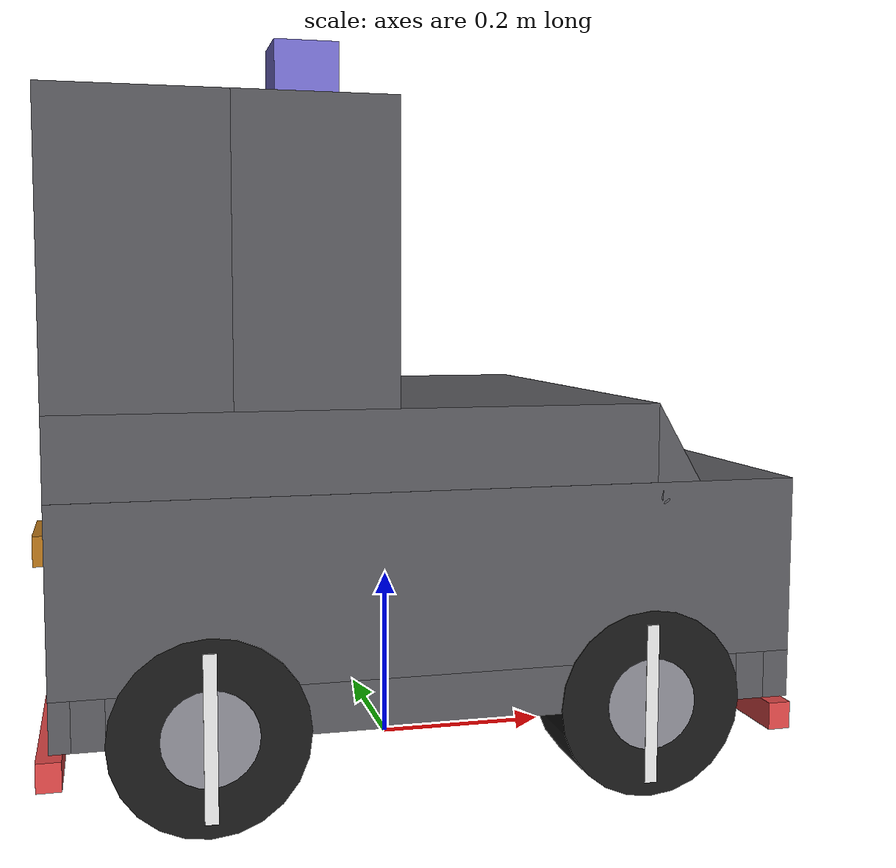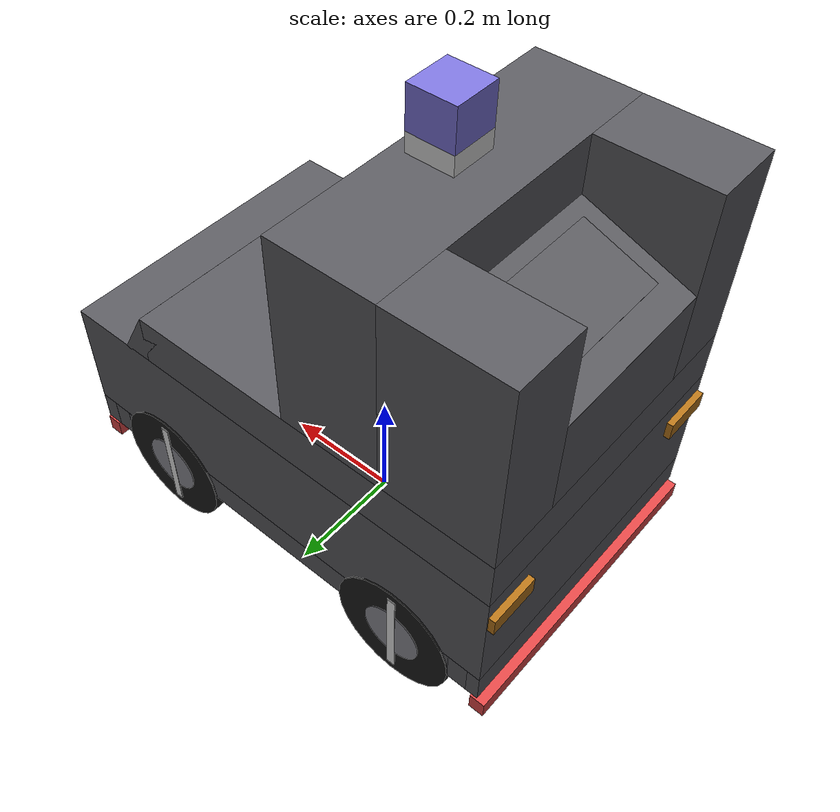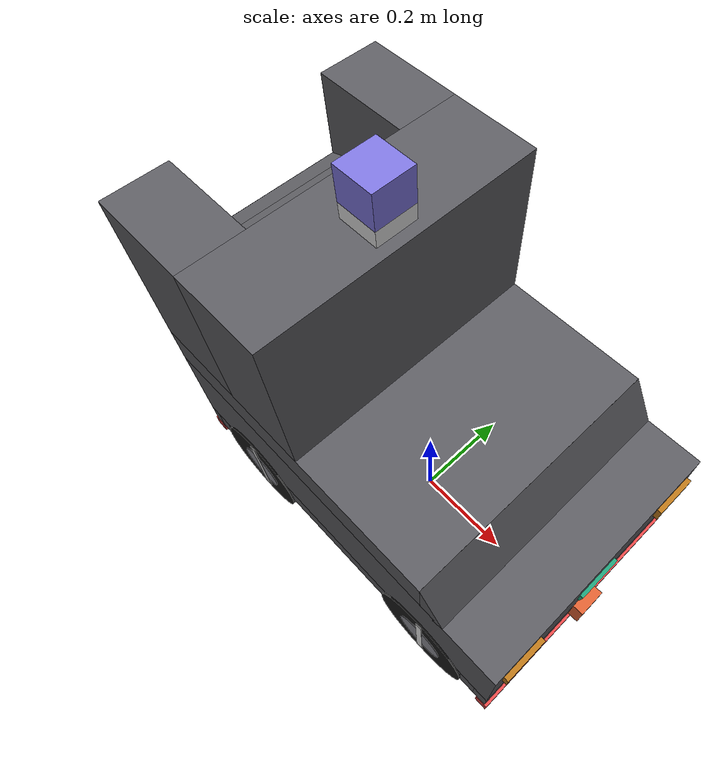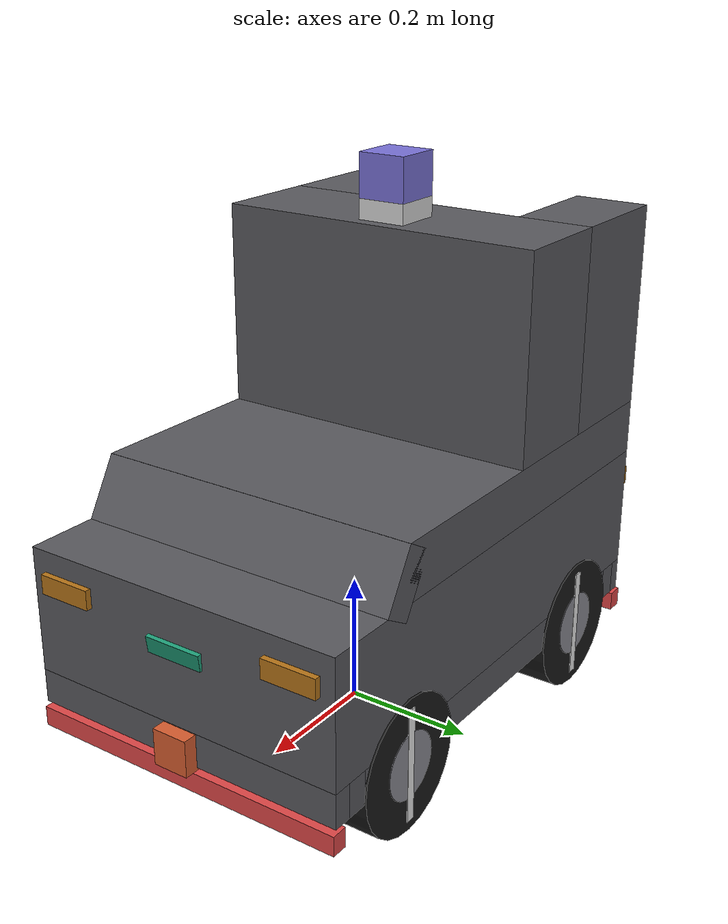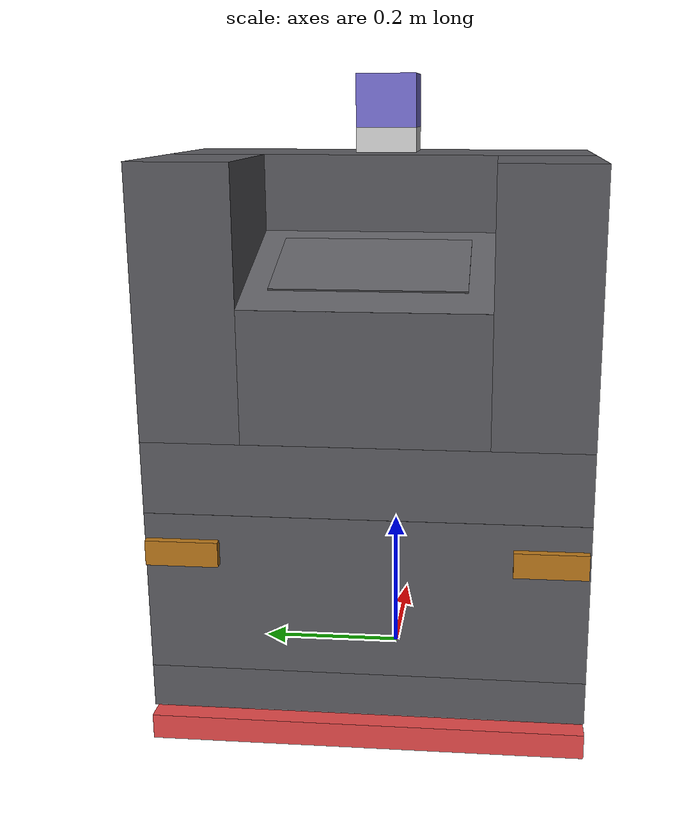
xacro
<?xml version="1.0"?>
<!--
  Dry-run entry point: the unmodified robot description plus ros2_control on mock hardware.
  Used by controllers.launch.py hardware:=mock and the mock kinematics test.
-->
<robot name="mecanum" xmlns:xacro="http://www.ros.org/wiki/xacro">

  <xacro:include filename="$(find mecanum_description)/urdf/mecanum.urdf.xacro"/>
  <xacro:include filename="$(find mecanum_controllers)/urdf/mecanum.ros2_control.xacro"/>

  <xacro:mecanum_ros2_control prefix="$(arg prefix)" hardware="mock"/>

</robot>

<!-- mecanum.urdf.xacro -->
<!-- Main entry point for the mecanum robot description (the washroom robot prototype). -->
<robot name="mecanum" xmlns:xacro="http://www.ros.org/wiki/xacro">

  <!-- Optional prefix for all links/joints (e.g. "robot1_") -->
  <xacro:arg name="prefix" default=""/>

  <xacro:include filename="$(find mecanum_description)/urdf/mecanum_params.xacro"/>
  <xacro:include filename="$(find mecanum_description)/urdf/materials.xacro"/>
  <xacro:include filename="$(find mecanum_description)/urdf/inertial_macros.xacro"/>
  <xacro:include filename="$(find mecanum_description)/urdf/mecanum_wheel.xacro"/>
  <xacro:include filename="$(find mecanum_description)/urdf/mecanum_robot.xacro"/>

  <xacro:mecanum_robot prefix="$(arg prefix)"/>

  <!-- Unitree L2 LiDAR (mount, lidar and IMU frames) -->
  <xacro:arg name="use_l2" default="true"/>
  <xacro:if value="$(arg use_l2)">
    <xacro:include filename="$(find mecanum_description)/urdf/sensors/unitree_l2.xacro"/>
  </xacro:if>

  <!-- RealSense D435i depth camera (body and optical frames) -->
  <xacro:arg name="use_d435i" default="true"/>
  <xacro:if value="$(arg use_d435i)">
    <xacro:include filename="$(find mecanum_description)/urdf/sensors/realsense_d435i.xacro"/>
  </xacro:if>

  <!-- RPLIDAR C1 2D lidar (scan frame) -->
  <xacro:arg name="use_lidar_2d" default="true"/>
  <xacro:if value="$(arg use_lidar_2d)">
    <xacro:include filename="$(find mecanum_description)/urdf/sensors/lidar_2d.xacro"/>
  </xacro:if>

  <!-- Four ultrasonic rangers (beam frames) -->
  <xacro:arg name="use_ultrasonics" default="true"/>
  <xacro:if value="$(arg use_ultrasonics)">
    <xacro:include filename="$(find mecanum_description)/urdf/sensors/ultrasonics.xacro"/>
  </xacro:if>

  <!-- Four downward cliff ToF sensors (beam frames) -->
  <xacro:arg name="use_cliff_tof" default="true"/>
  <xacro:if value="$(arg use_cliff_tof)">
    <xacro:include filename="$(find mecanum_description)/urdf/sensors/cliff_tof.xacro"/>
  </xacro:if>

  <!-- Front and rear bumper planks -->
  <xacro:arg name="use_bumpers" default="true"/>
  <xacro:if value="$(arg use_bumpers)">
    <xacro:include filename="$(find mecanum_description)/urdf/sensors/bumpers.xacro"/>
  </xacro:if>

  <!-- Not modelled: the E-stop (rear face of the tall box), the arm (not in the CAD yet) and
       the internal electronics. -->

</robot>

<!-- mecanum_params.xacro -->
<robot xmlns:xacro="http://www.ros.org/wiki/xacro">

  <!-- ===== Wheels (STEP bodies 'Folder 28*') ===== -->
  <!-- STAND-IN: unloaded CAD radius; measure the loaded radius on the robot -->
  <xacro:property name="wheel_radius" value="0.1025"/>
  <xacro:property name="wheel_width" value="0.085"/>
  <xacro:property name="wheel_hub_radius" value="0.05"/>
  <!-- STAND-IN: no masses were supplied; 1.5 kg assumed per wheel (the drive motors are
       counted in chassis_mass). Weigh one wheel with its hub. -->
  <xacro:property name="wheel_mass" value="1.5"/>
  <!-- Inertia of the STEP wheel solid scaled to wheel_mass (about the wheel centre) -->
  <xacro:property name="wheel_ixx" value="0.00582886"/>
  <xacro:property name="wheel_iyy" value="0.0100038"/>
  <!-- Wheel centre of mass offset along the axle, toward the robot centreline -->
  <xacro:property name="wheel_com_y" value="0.0003"/>

  <xacro:property name="front_axle_x" value="0.2363"/>
  <xacro:property name="rear_axle_x" value="-0.2357"/>
  <xacro:property name="wheel_y" value="0.2150"/>

  <!-- ===== Body (STEP body 'Cover', rebuilt from boxes in mecanum_robot.xacro) ===== -->
  <!-- Envelope relative to base_link: x -0.391..0.399, y -0.255..0.255,
       z -0.0037..0.6344 (0.099..0.737 m above the floor). -->
  <xacro:property name="chassis_mass" value="25.0"/>
  <xacro:property name="chassis_com_x" value="-0.065"/>
  <xacro:property name="chassis_com_z" value="0.2426"/>
  <xacro:property name="chassis_ixx" value="1.25341"/>
  <xacro:property name="chassis_iyy" value="1.83996"/>
  <xacro:property name="chassis_izz" value="1.69493"/>
  <xacro:property name="chassis_ixz" value="0.331293"/>

</robot>

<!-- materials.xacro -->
<!-- RViz colours. The sensor colours match the callouts in
     docs/Washroom_Robot_Prototype_Sensors_and_BOM.pdf. -->
<robot xmlns:xacro="http://www.ros.org/wiki/xacro">

  <material name="cad_grey">
    <color rgba="0.352 0.352 0.371 1"/>
  </material>

  <material name="tyre_black">
    <color rgba="0.1 0.1 0.1 1"/>
  </material>

  <material name="hub_grey">
    <color rgba="0.55 0.55 0.58 1"/>
  </material>

  <material name="marker_white">
    <color rgba="0.92 0.92 0.92 1"/>
  </material>

  <material name="l2_purple">
    <color rgba="0.48 0.45 0.85 1"/>
  </material>

  <material name="mount_white">
    <color rgba="0.85 0.85 0.85 1"/>
  </material>

  <material name="d435i_green">
    <color rgba="0.12 0.62 0.47 1"/>
  </material>

  <material name="lidar_orange">
    <color rgba="0.85 0.37 0.19 1"/>
  </material>

  <material name="ultrasonic_ochre">
    <color rgba="0.72 0.46 0.1 1"/>
  </material>

  <material name="tof_blue">
    <color rgba="0.23 0.53 0.84 1"/>
  </material>

  <material name="bumper_red">
    <color rgba="0.88 0.28 0.28 1"/>
  </material>

</robot>

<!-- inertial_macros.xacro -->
<!-- Inertia macros for solid primitives (about the centre of mass). -->
<robot xmlns:xacro="http://www.ros.org/wiki/xacro">

  <!-- Solid box with dimensions x, y, z -->
  <xacro:macro name="box_inertia" params="mass x y z *origin">
    <inertial>
      <xacro:insert_block name="origin"/>
      <mass value="${mass}"/>
      <inertia ixx="${mass * (y*y + z*z) / 12.0}" ixy="0.0" ixz="0.0"
               iyy="${mass * (x*x + z*z) / 12.0}" iyz="0.0"
               izz="${mass * (x*x + y*y) / 12.0}"/>
    </inertial>
  </xacro:macro>

  <!-- Solid cylinder with its axis along the local z axis -->
  <xacro:macro name="cylinder_inertia" params="mass radius length *origin">
    <inertial>
      <xacro:insert_block name="origin"/>
      <mass value="${mass}"/>
      <inertia ixx="${mass * (3*radius*radius + length*length) / 12.0}" ixy="0.0" ixz="0.0"
               iyy="${mass * (3*radius*radius + length*length) / 12.0}" iyz="0.0"
               izz="${mass * radius*radius / 2.0}"/>
    </inertial>
  </xacro:macro>

</robot>

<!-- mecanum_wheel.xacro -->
<!-- A single mecanum wheel: link and continuous joint. -->
<robot xmlns:xacro="http://www.ros.org/wiki/xacro">

  <xacro:macro name="mecanum_wheel" params="prefix name parent x y side">

    <link name="${prefix}${name}_wheel_link">
      <inertial>
        <origin xyz="0 ${-side * wheel_com_y} 0" rpy="0 0 0"/>
        <mass value="${wheel_mass}"/>
        <inertia ixx="${wheel_ixx}" ixy="0" ixz="0" iyy="${wheel_iyy}" iyz="0"
                 izz="${wheel_ixx}"/>
      </inertial>
      <!-- Tyre -->
      <visual>
        <origin xyz="0 0 0" rpy="${pi/2} 0 0"/>
        <geometry>
          <cylinder radius="${wheel_radius}" length="${wheel_width}"/>
        </geometry>
        <material name="tyre_black"/>
      </visual>
      <!-- Hub -->
      <visual>
        <origin xyz="0 0 0" rpy="${pi/2} 0 0"/>
        <geometry>
          <cylinder radius="${wheel_hub_radius}" length="${wheel_width + 0.002}"/>
        </geometry>
        <material name="hub_grey"/>
      </visual>
      <!-- White bar across the wheel face: shows the wheel turning in RViz -->
      <visual>
        <origin xyz="0 0 0" rpy="0 0 0"/>
        <geometry>
          <box size="0.014 ${wheel_width + 0.003} ${0.85 * 2 * wheel_radius}"/>
        </geometry>
        <material name="marker_white"/>
      </visual>
      <collision>
        <origin xyz="0 0 0" rpy="${pi/2} 0 0"/>
        <geometry>
          <cylinder radius="${wheel_radius}" length="${wheel_width}"/>
        </geometry>
      </collision>
    </link>

    <joint name="${prefix}${name}_wheel_joint" type="continuous">
      <parent link="${prefix}${parent}"/>
      <child link="${prefix}${name}_wheel_link"/>
      <origin xyz="${x} ${y} 0" rpy="0 0 0"/>
      <axis xyz="0 1 0"/>
    </joint>

  </xacro:macro>

</robot>

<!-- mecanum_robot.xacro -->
<!-- Robot body: base_footprint, base_link, chassis_link and the four wheels. -->
<robot xmlns:xacro="http://www.ros.org/wiki/xacro">

  <!-- One box of the body envelope, used for both visual and collision -->
  <xacro:macro name="chassis_box" params="xyz rpy:='0 0 0' size">
    <visual>
      <origin xyz="${xyz}" rpy="${rpy}"/>
      <geometry>
        <box size="${size}"/>
      </geometry>
      <material name="cad_grey"/>
    </visual>
    <collision>
      <origin xyz="${xyz}" rpy="${rpy}"/>
      <geometry>
        <box size="${size}"/>
      </geometry>
    </collision>
  </xacro:macro>

  <xacro:macro name="mecanum_robot" params="prefix">

    <!-- Ground-projected robot frame (REP-105), below the wheel-rectangle centre -->
    <link name="${prefix}base_footprint" />

    <joint name="${prefix}base_joint" type="fixed">
      <parent link="${prefix}base_footprint" />
      <child link="${prefix}base_link" />
      <origin xyz="0 0 ${wheel_radius}" rpy="0 0 0" />
    </joint>

    <!-- base_link sits at wheel axle height. Frame only: the body mass is in chassis_link, so
         robot_state_publisher does not warn about an inertial root (Gazebo lumps the fixed
         joint). -->
    <link name="${prefix}base_link" />

    <link name="${prefix}chassis_link">
      <inertial>
        <origin xyz="${chassis_com_x} 0 ${chassis_com_z}" rpy="0 0 0"/>
        <mass value="${chassis_mass}"/>
        <inertia ixx="${chassis_ixx}" ixy="0" ixz="${chassis_ixz}" iyy="${chassis_iyy}"
                 iyz="0" izz="${chassis_izz}"/>
      </inertial>
      <!-- Underside slab, 9 parts around the four cliff-sensor pockets -->
      <xacro:chassis_box xyz="-0.3805 0 0.0224" size="0.021 0.51 0.0521"/>
      <xacro:chassis_box xyz="-0.3535 -0.2449 0.0224" size="0.033 0.0202 0.0521"/>
      <xacro:chassis_box xyz="-0.3535 0 0.0224" size="0.033 0.3616 0.0521"/>
      <xacro:chassis_box xyz="-0.3535 0.2449 0.0224" size="0.033 0.0202 0.0521"/>
      <xacro:chassis_box xyz="0 0 0.0224" size="0.674 0.51 0.0521"/>
      <xacro:chassis_box xyz="0.3535 -0.2449 0.0224" size="0.033 0.0202 0.0521"/>
      <xacro:chassis_box xyz="0.3535 0 0.0224" size="0.033 0.3616 0.0521"/>
      <xacro:chassis_box xyz="0.3535 0.2449 0.0224" size="0.033 0.0202 0.0521"/>
      <xacro:chassis_box xyz="0.3845 0 0.0224" size="0.029 0.51 0.0521"/>
      <!-- Lower body (envelope of the open-bottom shell) -->
      <xacro:chassis_box xyz="0.004 0 0.1446" size="0.79 0.51 0.1923"/>
      <!-- Raised deck (the arm will stand here) -->
      <xacro:chassis_box xyz="-0.0755 0 0.2831" size="0.6309 0.51 0.0846"/>
      <!-- 60 deg slope from the deck down to the front step -->
      <xacro:chassis_box xyz="0.2438 0 0.2713" rpy="0 -0.523598775 0" size="0.0473 0.51 0.0977"/>
      <!-- Tall box: front part and the two rear ears around the rear notch -->
      <xacro:chassis_box xyz="-0.1255 0 0.4799" size="0.167 0.51 0.309"/>
      <xacro:chassis_box xyz="-0.3 0.1975 0.4799" size="0.182 0.115 0.309"/>
      <xacro:chassis_box xyz="-0.3 -0.1975 0.4799" size="0.182 0.115 0.309"/>
      <!-- Rear notch: below its floor, the 20 deg floor, and the 2 mm raised pad on it -->
      <xacro:chassis_box xyz="-0.3 0 0.4016" size="0.182 0.28 0.1523"/>
      <xacro:chassis_box xyz="-0.2885 0 0.4792" rpy="0 -0.349044398 0" size="0.1937 0.28 0.0672"/>
      <xacro:chassis_box xyz="-0.2902 0 0.5149" rpy="0 -0.34906585 0" size="0.125 0.223 0.003"/>
    </link>

    <joint name="${prefix}chassis_joint" type="fixed">
      <parent link="${prefix}base_link" />
      <child link="${prefix}chassis_link" />
      <origin xyz="0 0 0" rpy="0 0 0" />
    </joint>

    <xacro:mecanum_wheel prefix="${prefix}" name="front_left" parent="base_link"
      x="${front_axle_x}" y="${wheel_y}" side="1" />
    <xacro:mecanum_wheel prefix="${prefix}" name="front_right" parent="base_link"
      x="${front_axle_x}" y="${-wheel_y}" side="-1" />
    <xacro:mecanum_wheel prefix="${prefix}" name="rear_left" parent="base_link"
      x="${rear_axle_x}" y="${wheel_y}" side="1" />
    <xacro:mecanum_wheel prefix="${prefix}" name="rear_right" parent="base_link"
      x="${rear_axle_x}" y="${-wheel_y}" side="-1" />

  </xacro:macro>

</robot>

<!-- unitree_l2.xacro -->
<robot xmlns:xacro="http://www.ros.org/wiki/xacro">

  <!-- Vendor datasheet values (not stand-ins) -->
  <xacro:property name="l2_body_size" value="0.075"/>
  <xacro:property name="l2_body_height" value="0.065"/>
  <xacro:property name="l2_mass" value="0.230"/>
  <!-- IMU origin in the lidar frame, from the unilidar_sdk2 README -->
  <xacro:property name="l2_imu_x" value="-0.007698"/>
  <xacro:property name="l2_imu_y" value="-0.014655"/>
  <xacro:property name="l2_imu_z" value="0.00667"/>

  <xacro:property name="l2_mount_x" value="-0.100"/>
  <xacro:property name="l2_mount_y" value="0.0"/>
  <xacro:property name="l2_mount_z" value="${0.7369 + 0.030 - wheel_radius}"/>
  <xacro:property name="l2_standoff_height" value="0.030"/>
  <xacro:property name="l2_cable_yaw" value="0.0"/>

  <xacro:macro name="unitree_l2" params="prefix parent">

    <joint name="${prefix}l2_mount_joint" type="fixed">
      <parent link="${prefix}${parent}"/>
      <child link="${prefix}l2_mount"/>
      <origin xyz="${l2_mount_x} ${l2_mount_y} ${l2_mount_z}" rpy="0 0 0"/>
    </joint>

    <!-- L2 body above the mounting face and the standoff below it. Mass: the L2 only (the
         standoff is counted in chassis_mass). -->
    <link name="${prefix}l2_mount">
      <xacro:box_inertia mass="${l2_mass}" x="${l2_body_size}" y="${l2_body_size}"
        z="${l2_body_height}">
        <origin xyz="0 0 ${l2_body_height/2}" rpy="0 0 0"/>
      </xacro:box_inertia>
      <visual>
        <origin xyz="0 0 ${l2_body_height/2}" rpy="0 0 0"/>
        <geometry>
          <box size="${l2_body_size} ${l2_body_size} ${l2_body_height}"/>
        </geometry>
        <material name="l2_purple"/>
      </visual>
      <visual>
        <origin xyz="0 0 ${-l2_standoff_height/2}" rpy="0 0 0"/>
        <geometry>
          <box size="${l2_body_size} ${l2_body_size} ${l2_standoff_height}"/>
        </geometry>
        <material name="mount_white"/>
      </visual>
      <collision>
        <origin xyz="0 0 ${(l2_body_height - l2_standoff_height)/2}" rpy="0 0 0"/>
        <geometry>
          <box size="${l2_body_size} ${l2_body_size} ${l2_body_height + l2_standoff_height}"/>
        </geometry>
      </collision>
    </link>

    <!-- Point cloud frame (vendor lidar frame) -->
    <joint name="${prefix}l2_lidar_joint" type="fixed">
      <parent link="${prefix}l2_mount"/>
      <child link="${prefix}l2_lidar"/>
      <origin xyz="0 0 0" rpy="0 0 ${l2_cable_yaw}"/>
    </joint>
    <link name="${prefix}l2_lidar"/>

    <!-- Built-in 6-axis IMU frame: vendor offset in the lidar frame -->
    <joint name="${prefix}l2_imu_joint" type="fixed">
      <parent link="${prefix}l2_lidar"/>
      <child link="${prefix}l2_imu"/>
      <origin xyz="${l2_imu_x} ${l2_imu_y} ${l2_imu_z}" rpy="0 0 0"/>
    </joint>
    <link name="${prefix}l2_imu"/>

  </xacro:macro>

  <xacro:unitree_l2 prefix="$(arg prefix)" parent="base_link"/>

</robot>

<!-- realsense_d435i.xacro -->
<robot xmlns:xacro="http://www.ros.org/wiki/xacro">

  <xacro:property name="d435i_body_x" value="0.025"/>
  <xacro:property name="d435i_body_y" value="0.09"/>
  <xacro:property name="d435i_body_z" value="0.025"/>
  <!-- Pose in base_link: front face of the STEP body (0.264 m above the floor) -->
  <xacro:property name="d435i_x" value="0.404"/>
  <xacro:property name="d435i_z" value="0.1614"/>
  <!-- STAND-IN: PDF "pitched -8 deg" (optical axis 8 deg below horizontal); positive pitch
       about +y tips +x down. Measure on the robot. -->
  <xacro:property name="d435i_pitch" value="${radians(8.0)}"/>

  <xacro:macro name="realsense_d435i" params="prefix parent">

    <joint name="${prefix}d435i_joint" type="fixed">
      <parent link="${prefix}${parent}"/>
      <child link="${prefix}d435i_link"/>
      <origin xyz="${d435i_x} 0 ${d435i_z}" rpy="0 ${d435i_pitch} 0"/>
    </joint>

    <!-- Massless: the camera's mass is counted in chassis_mass -->
    <link name="${prefix}d435i_link">
      <visual>
        <origin xyz="${-d435i_body_x/2} 0 0" rpy="0 0 0"/>
        <geometry>
          <box size="${d435i_body_x} ${d435i_body_y} ${d435i_body_z}"/>
        </geometry>
        <material name="d435i_green"/>
      </visual>
      <collision>
        <origin xyz="${-d435i_body_x/2} 0 0" rpy="0 0 0"/>
        <geometry>
          <box size="${d435i_body_x} ${d435i_body_y} ${d435i_body_z}"/>
        </geometry>
      </collision>
    </link>

    <joint name="${prefix}d435i_optical_joint" type="fixed">
      <parent link="${prefix}d435i_link"/>
      <child link="${prefix}d435i_optical_frame"/>
      <origin xyz="0 0 0" rpy="${-pi/2} 0 ${-pi/2}"/>
    </joint>
    <link name="${prefix}d435i_optical_frame"/>

  </xacro:macro>

  <xacro:realsense_d435i prefix="$(arg prefix)" parent="base_link"/>

</robot>

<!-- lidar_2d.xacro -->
<robot xmlns:xacro="http://www.ros.org/wiki/xacro">

  <xacro:property name="lidar_2d_body_x" value="0.0413"/>
  <xacro:property name="lidar_2d_body_y" value="0.0556"/>
  <xacro:property name="lidar_2d_body_z" value="0.0556"/>
  <!-- Pose in base_link -->
  <xacro:property name="lidar_2d_x" value="0.3997"/>
  <!-- STAND-IN: PDF scan plane 0.13 m above the floor; measure the C1's optical centre height,
       and check its 0 deg direction on the unit. -->
  <xacro:property name="lidar_2d_z" value="0.0275"/>
  <!-- Body centre below the scan plane -->
  <xacro:property name="lidar_2d_body_offset_z" value="-0.0078"/>

  <xacro:macro name="lidar_2d" params="prefix parent">

    <joint name="${prefix}lidar_2d_joint" type="fixed">
      <parent link="${prefix}${parent}"/>
      <child link="${prefix}lidar_2d_link"/>
      <origin xyz="${lidar_2d_x} 0 ${lidar_2d_z}" rpy="0 0 0"/>
    </joint>

    <!-- Massless: the lidar's mass is counted in chassis_mass -->
    <link name="${prefix}lidar_2d_link">
      <visual>
        <origin xyz="0 0 ${lidar_2d_body_offset_z}" rpy="0 0 0"/>
        <geometry>
          <box size="${lidar_2d_body_x} ${lidar_2d_body_y} ${lidar_2d_body_z}"/>
        </geometry>
        <material name="lidar_orange"/>
      </visual>
      <collision>
        <origin xyz="0 0 ${lidar_2d_body_offset_z}" rpy="0 0 0"/>
        <geometry>
          <box size="${lidar_2d_body_x} ${lidar_2d_body_y} ${lidar_2d_body_z}"/>
        </geometry>
      </collision>
    </link>

  </xacro:macro>

  <xacro:lidar_2d prefix="$(arg prefix)" parent="base_link"/>

</robot>

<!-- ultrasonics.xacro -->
<robot xmlns:xacro="http://www.ros.org/wiki/xacro">

  <xacro:property name="ultrasonic_body_x" value="0.029"/>
  <xacro:property name="ultrasonic_body_y" value="0.0846"/>
  <xacro:property name="ultrasonic_body_z" value="0.0296"/>

  <!-- pos: front_left, ...; x, y, z: outward-face centre in the parent frame; yaw: beam
       direction (0 front, pi rear) -->
  <xacro:macro name="ultrasonic" params="prefix parent pos x y z yaw">

    <joint name="${prefix}ultrasonic_${pos}_joint" type="fixed">
      <parent link="${prefix}${parent}"/>
      <child link="${prefix}ultrasonic_${pos}_link"/>
      <origin xyz="${x} ${y} ${z}" rpy="0 0 ${yaw}"/>
    </joint>

    <!-- Massless: counted in chassis_mass -->
    <link name="${prefix}ultrasonic_${pos}_link">
      <visual>
        <origin xyz="${-ultrasonic_body_x/2} 0 0" rpy="0 0 0"/>
        <geometry>
          <box size="${ultrasonic_body_x} ${ultrasonic_body_y} ${ultrasonic_body_z}"/>
        </geometry>
        <material name="ultrasonic_ochre"/>
      </visual>
      <collision>
        <origin xyz="${-ultrasonic_body_x/2} 0 0" rpy="0 0 0"/>
        <geometry>
          <box size="${ultrasonic_body_x} ${ultrasonic_body_y} ${ultrasonic_body_z}"/>
        </geometry>
      </collision>
    </link>

  </xacro:macro>

  <!-- Poses in base_link (front pair 0.296 m, rear pair 0.298 m above the floor) -->
  <xacro:ultrasonic prefix="$(arg prefix)" parent="base_link" pos="front_left"
    x="0.408" y="0.1905" z="0.1937" yaw="0"/>
  <xacro:ultrasonic prefix="$(arg prefix)" parent="base_link" pos="front_right"
    x="0.408" y="-0.1905" z="0.1937" yaw="0"/>
  <xacro:ultrasonic prefix="$(arg prefix)" parent="base_link" pos="rear_left"
    x="-0.401" y="0.2105" z="0.1957" yaw="${pi}"/>
  <xacro:ultrasonic prefix="$(arg prefix)" parent="base_link" pos="rear_right"
    x="-0.401" y="-0.2105" z="0.1957" yaw="${pi}"/>

</robot>

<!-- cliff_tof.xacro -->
<robot xmlns:xacro="http://www.ros.org/wiki/xacro">

  <xacro:property name="cliff_tof_body_x" value="0.0296"/>
  <xacro:property name="cliff_tof_body_y" value="0.05"/>
  <xacro:property name="cliff_tof_body_z" value="0.029"/>
  <xacro:property name="cliff_tof_x" value="0.3535"/>
  <xacro:property name="cliff_tof_y" value="0.2078"/>
  <!-- STAND-IN: STEP height 0.119 m above the floor; the PDF says 0.08 m. Measure the sensor
       face height on the robot; the cliff threshold depends on it. -->
  <xacro:property name="cliff_tof_z" value="0.0169"/>

  <xacro:macro name="cliff_tof" params="prefix parent pos x y z">

    <joint name="${prefix}cliff_tof_${pos}_joint" type="fixed">
      <parent link="${prefix}${parent}"/>
      <child link="${prefix}cliff_tof_${pos}_link"/>
      <origin xyz="${x} ${y} ${z}" rpy="0 ${pi/2} 0"/>
    </joint>

    <!-- Massless: counted in chassis_mass -->
    <link name="${prefix}cliff_tof_${pos}_link">
      <visual>
        <origin xyz="${-cliff_tof_body_x/2} 0 0" rpy="0 0 0"/>
        <geometry>
          <box size="${cliff_tof_body_x} ${cliff_tof_body_y} ${cliff_tof_body_z}"/>
        </geometry>
        <material name="tof_blue"/>
      </visual>
      <collision>
        <origin xyz="${-cliff_tof_body_x/2} 0 0" rpy="0 0 0"/>
        <geometry>
          <box size="${cliff_tof_body_x} ${cliff_tof_body_y} ${cliff_tof_body_z}"/>
        </geometry>
      </collision>
    </link>

  </xacro:macro>

  <xacro:cliff_tof prefix="$(arg prefix)" parent="base_link" pos="front_left"
    x="${cliff_tof_x}" y="${cliff_tof_y}" z="${cliff_tof_z}"/>
  <xacro:cliff_tof prefix="$(arg prefix)" parent="base_link" pos="front_right"
    x="${cliff_tof_x}" y="${-cliff_tof_y}" z="${cliff_tof_z}"/>
  <xacro:cliff_tof prefix="$(arg prefix)" parent="base_link" pos="rear_left"
    x="${-cliff_tof_x}" y="${cliff_tof_y}" z="${cliff_tof_z}"/>
  <xacro:cliff_tof prefix="$(arg prefix)" parent="base_link" pos="rear_right"
    x="${-cliff_tof_x}" y="${-cliff_tof_y}" z="${cliff_tof_z}"/>

</robot>

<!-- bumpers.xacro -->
<robot xmlns:xacro="http://www.ros.org/wiki/xacro">

  <xacro:property name="bumper_depth" value="0.025"/>
  <xacro:property name="bumper_width" value="0.51"/>
  <xacro:property name="bumper_height" value="0.03"/>
  <!-- STAND-IN: STEP plank position; the PDF wants the planks 3 cm proud of the faces -->
  <xacro:property name="bumper_x" value="0.3915"/>
  <!-- Plank centre 0.076 m above the floor -->
  <xacro:property name="bumper_z" value="-0.0261"/>
  <!-- STAND-IN: plank and return springs, taken out of chassis_mass so the total stays the same.
       Weigh a plank. -->
  <xacro:property name="bumper_mass" value="0.1"/>

  <xacro:macro name="bumper" params="prefix parent pos x z yaw">

    <joint name="${prefix}bumper_${pos}_joint" type="fixed">
      <parent link="${prefix}${parent}"/>
      <child link="${prefix}bumper_${pos}_link"/>
      <origin xyz="${x} 0 ${z}" rpy="0 0 ${yaw}"/>
    </joint>

    <link name="${prefix}bumper_${pos}_link">
      <xacro:box_inertia mass="${bumper_mass}" x="${bumper_depth}" y="${bumper_width}"
        z="${bumper_height}">
        <origin xyz="0 0 0" rpy="0 0 0"/>
      </xacro:box_inertia>
      <visual>
        <origin xyz="0 0 0" rpy="0 0 0"/>
        <geometry>
          <box size="${bumper_depth} ${bumper_width} ${bumper_height}"/>
        </geometry>
        <material name="bumper_red"/>
      </visual>
      <collision>
        <origin xyz="0 0 0" rpy="0 0 0"/>
        <geometry>
          <box size="${bumper_depth} ${bumper_width} ${bumper_height}"/>
        </geometry>
      </collision>
    </link>

  </xacro:macro>

  <xacro:bumper prefix="$(arg prefix)" parent="base_link" pos="front"
    x="${bumper_x}" z="${bumper_z}" yaw="0"/>
  <xacro:bumper prefix="$(arg prefix)" parent="base_link" pos="rear"
    x="${-bumper_x}" z="${bumper_z}" yaw="${pi}"/>

</robot>
